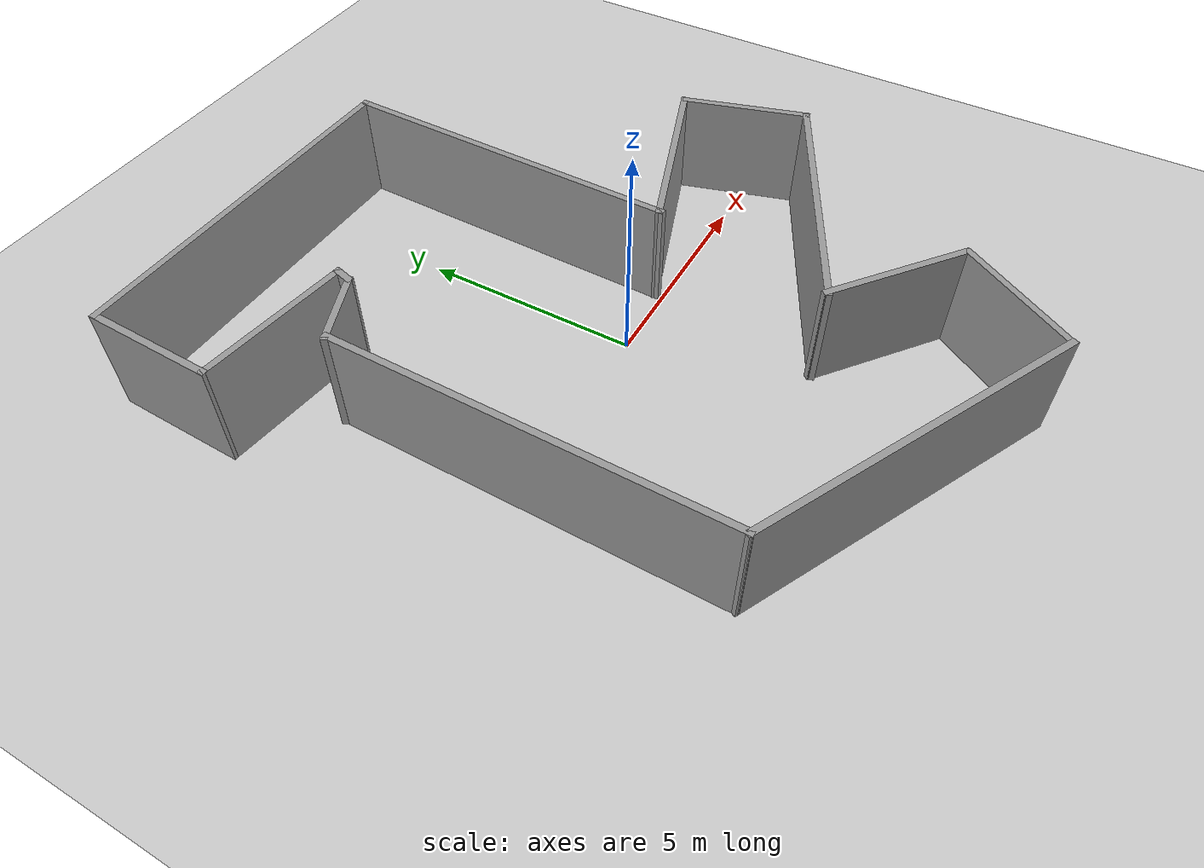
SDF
<sdf version="1.6">
 <world name="default">
  <light name="sun" type="directional">
   <pose>0 0 10 0 -0 0</pose>
   <diffuse>0.8 0.8 0.8 1</diffuse>
   <specular>0.2 0.2 0.2 1</specular>
   <attenuation>
    <range>1000</range>
    <constant>0.9</constant>
    <linear>0.01</linear>
    <quadratic>0.001</quadratic>
   </attenuation>
   <direction>-0.5 0.1 -0.9</direction>
  </light>
  <model name="ground_plane">
   <static>1</static>
   <link name="link">
    <collision name="collision">
     <geometry><plane><normal>0 0 1</normal><size>100 100</size></plane></geometry>
     <surface>
      <contact><collide_bitmask>65535</collide_bitmask></contact>
      <friction><ode><mu>100</mu><mu2>50</mu2></ode></friction>
     </surface>
    </collision>
    <visual name="visual">
     <cast_shadows>0</cast_shadows>
     <geometry><plane><normal>0 0 1</normal><size>100 100</size></plane></geometry>
     <material>
      <script><uri>file://media/materials/scripts/gazebo.material</uri><name>Gazebo/Grey</name></script>
     </material>
    </visual>
   </link>
  </model>
  <gravity>0 0 -9.8</gravity>
  <magnetic_field>6e-06 2.3e-05 -4.2e-05</magnetic_field>
  <atmosphere type="adiabatic"/>
  <physics name="default_physics" default="0" type="ode">
   <max_step_size>0.001</max_step_size>
   <real_time_factor>1</real_time_factor>
   <real_time_update_rate>1000</real_time_update_rate>
  </physics>
  <scene><ambient>0.4 0.4 0.4 1</ambient><background>0.7 0.7 0.7 1</background><shadows>1</shadows></scene>
  <audio><device>default</device></audio>
  <spherical_coordinates>
   <surface_model>EARTH_WGS84</surface_model>
   <latitude_deg>0</latitude_deg>
   <longitude_deg>0</longitude_deg>
   <elevation>0</elevation>
   <heading_deg>0</heading_deg>
  </spherical_coordinates>
  <model name="simple_env_2_1">
   <pose>0.04454 -0.052436 0 0 -0 0</pose>
   <link name="Wall_37">
    <collision name="Wall_37_Collision">
     <geometry><box><size>8.85899 0.15 2.5</size></box></geometry>
     <pose>0 0 1.25 0 -0 0</pose>
    </collision>
    <visual name="Wall_37_Visual">
     <pose>0 0 1.25 0 -0 0</pose>
     <geometry><box><size>8.85899 0.15 2.5</size></box></geometry>
     <material>
      <script><uri>file://media/materials/scripts/gazebo.material</uri><name>Gazebo/Grey</name></script>
      <ambient>1 1 1 1</ambient>
     </material>
     <meta><layer>0</layer></meta>
    </visual>
    <pose>-4.71148 -0.304432 0 0 -0 -1.57929</pose>
   </link>
   <link name="Wall_38">
    <collision name="Wall_38_Collision">
     <geometry><box><size>7.8601 0.15 2.5</size></box></geometry>
     <pose>0 0 1.25 0 -0 0</pose>
    </collision>
    <visual name="Wall_38_Visual">
     <pose>0 0 1.25 0 -0 0</pose>
     <geometry><box><size>7.8601 0.15 2.5</size></box></geometry>
     <material>
      <script><uri>file://media/materials/scripts/gazebo.material</uri><name>Gazebo/Grey</name></script>
      <ambient>1 1 1 1</ambient>
     </material>
     <meta><layer>0</layer></meta>
    </visual>
    <pose>-1.3524 -6.44538 0 0 -0 -0.481882</pose>
   </link>
   <link name="Wall_39">
    <collision name="Wall_39_Collision">
     <geometry><box><size>2.98628 0.15 2.5</size></box></geometry>
     <pose>0 0 1.25 0 -0 0</pose>
    </collision>
    <visual name="Wall_39_Visual">
     <pose>0 0 1.25 0 -0 0</pose>
     <geometry><box><size>2.98628 0.15 2.5</size></box></geometry>
     <material>
      <script><uri>file://media/materials/scripts/gazebo.material</uri><name>Gazebo/Grey</name></script>
      <ambient>1 1 1 1</ambient>
     </material>
     <meta><layer>0</layer></meta>
    </visual>
    <pose>2.83685 -7.008 0 0 -0 0.994149</pose>
   </link>
   <link name="Wall_40">
    <collision name="Wall_40_Collision">
     <geometry><box><size>3.42533 0.15 2.5</size></box></geometry>
     <pose>0 0 1.25 0 -0 0</pose>
    </collision>
    <visual name="Wall_40_Visual">
     <pose>0 0 1.25 0 -0 0</pose>
     <geometry><box><size>3.42533 0.15 2.5</size></box></geometry>
     <material>
      <script><uri>file://media/materials/scripts/gazebo.material</uri><name>Gazebo/Grey</name></script>
      <ambient>1 1 1 1</ambient>
     </material>
     <meta><layer>0</layer></meta>
    </visual>
    <pose>2.33764 -4.75302 0 0 -0 2.46062</pose>
   </link>
   <link name="Wall_41">
    <collision name="Wall_41_Collision">
     <geometry><box><size>6.12129 0.15 2.5</size></box></geometry>
     <pose>0 0 1.25 0 -0 0</pose>
    </collision>
    <visual name="Wall_41_Visual">
     <pose>0 0 1.25 0 -0 0</pose>
     <geometry><box><size>6.12129 0.15 2.5</size></box></geometry>
     <material>
      <script><uri>file://media/materials/scripts/gazebo.material</uri><name>Gazebo/Grey</name></script>
      <ambient>1 1 1 1</ambient>
     </material>
     <meta><layer>0</layer></meta>
    </visual>
    <pose>3.75243 -2.45606 0 0 -0 0.450933</pose>
   </link>
   <link name="Wall_42">
    <collision name="Wall_42_Collision">
     <geometry><box><size>3.01734 0.15 2.5</size></box></geometry>
     <pose>0 0 1.25 0 -0 0</pose>
    </collision>
    <visual name="Wall_42_Visual">
     <pose>0 0 1.25 0 -0 0</pose>
     <geometry><box><size>3.01734 0.15 2.5</size></box></geometry>
     <material>
      <script><uri>file://media/materials/scripts/gazebo.material</uri><name>Gazebo/Grey</name></script>
      <ambient>1 1 1 1</ambient>
     </material>
     <meta><layer>0</layer></meta>
    </visual>
    <pose>6.07357 0.219864 0 0 -0 1.85846</pose>
   </link>
   <link name="Wall_43">
    <collision name="Wall_43_Collision">
     <geometry><box><size>4.38092 0.15 2.5</size></box></geometry>
     <pose>0 0 1.25 0 -0 0</pose>
    </collision>
    <visual name="Wall_43_Visual">
     <pose>0 0 1.25 0 -0 0</pose>
     <geometry><box><size>4.38092 0.15 2.5</size></box></geometry>
     <material>
      <script><uri>file://media/materials/scripts/gazebo.material</uri><name>Gazebo/Grey</name></script>
      <ambient>1 1 1 1</ambient>
     </material>
     <meta><layer>0</layer></meta>
    </visual>
    <pose>3.66583 0.948881 0 0 -0 -2.81113</pose>
   </link>
   <link name="Wall_44">
    <collision name="Wall_44_Collision">
     <geometry><box><size>8.06703 0.15 2.5</size></box></geometry>
     <pose>0 0 1.25 0 -0 0</pose>
    </collision>
    <visual name="Wall_44_Visual">
     <pose>0 0 1.25 0 -0 0</pose>
     <geometry><box><size>8.06703 0.15 2.5</size></box></geometry>
     <material>
      <script><uri>file://media/materials/scripts/gazebo.material</uri><name>Gazebo/Grey</name></script>
      <ambient>1 1 1 1</ambient>
     </material>
     <meta><layer>0</layer></meta>
    </visual>
    <pose>1.73826 4.1796 0 0 -0 1.55225</pose>
   </link>
   <link name="Wall_45">
    <collision name="Wall_45_Collision">
     <geometry><box><size>8.38024 0.15 2.5</size></box></geometry>
     <pose>0 0 1.25 0 -0 0</pose>
    </collision>
    <visual name="Wall_45_Visual">
     <pose>0 0 1.25 0 -0 0</pose>
     <geometry><box><size>8.38024 0.15 2.5</size></box></geometry>
     <material>
      <script><uri>file://media/materials/scripts/gazebo.material</uri><name>Gazebo/Grey</name></script>
      <ambient>1 1 1 1</ambient>
     </material>
     <meta><layer>0</layer></meta>
    </visual>
    <pose>-2.30321 8.21452 0 0 -0 3.13141</pose>
   </link>
   <link name="Wall_46">
    <collision name="Wall_46_Collision">
     <geometry><box><size>2.98225 0.15 2.5</size></box></geometry>
     <pose>0 0 1.25 0 -0 0</pose>
    </collision>
    <visual name="Wall_46_Visual">
     <pose>0 0 1.25 0 -0 0</pose>
     <geometry><box><size>2.98225 0.15 2.5</size></box></geometry>
     <material>
      <script><uri>file://media/materials/scripts/gazebo.material</uri><name>Gazebo/Grey</name></script>
      <ambient>1 1 1 1</ambient>
     </material>
     <meta><layer>0</layer></meta>
    </visual>
    <pose>-6.46248 6.84071 0 0 -0 -1.59498</pose>
   </link>
   <link name="Wall_47">
    <collision name="Wall_47_Collision">
     <geometry><box><size>3.51546 0.15 2.5</size></box></geometry>
     <pose>0 0 1.25 0 -0 0</pose>
    </collision>
    <visual name="Wall_47_Visual">
     <pose>0 0 1.25 0 -0 0</pose>
     <geometry><box><size>3.51546 0.15 2.5</size></box></geometry>
     <material>
      <script><uri>file://media/materials/scripts/gazebo.material</uri><name>Gazebo/Grey</name></script>
      <ambient>1 1 1 1</ambient>
     </material>
     <meta><layer>0</layer></meta>
    </visual>
    <pose>-4.81763 5.21034 0 0 -0 -0.127915</pose>
   </link>
   <link name="Wall_48">
    <collision name="Wall_48_Collision">
     <geometry><box><size>0.5 0.15 2.5</size></box></geometry>
     <pose>0 0 1.25 0 -0 0</pose>
    </collision>
    <visual name="Wall_48_Visual">
     <pose>0 0 1.25 0 -0 0</pose>
     <geometry><box><size>0.5 0.15 2.5</size></box></geometry>
     <material>
      <script><uri>file://media/materials/scripts/gazebo.material</uri><name>Gazebo/Grey</name></script>
      <ambient>1 1 1 1</ambient>
     </material>
     <meta><layer>0</layer></meta>
    </visual>
    <pose>-3.19394 4.82665 0 0 -0 -1.8326</pose>
   </link>
   <link name="Wall_49">
    <collision name="Wall_49_Collision">
     <geometry><box><size>1.74107 0.15 2.5</size></box></geometry>
     <pose>0 0 1.25 0 -0 0</pose>
    </collision>
    <visual name="Wall_49_Visual">
     <pose>0 0 1.25 0 -0 0</pose>
     <geometry><box><size>1.74107 0.15 2.5</size></box></geometry>
     <material>
      <script><uri>file://media/materials/scripts/gazebo.material</uri><name>Gazebo/Grey</name></script>
      <ambient>1 1 1 1</ambient>
     </material>
     <meta><layer>0</layer></meta>
    </visual>
    <pose>-3.97446 4.35376 0 0 -0 -2.74969</pose>
   </link>
   <static>1</static>
  </model>
 </world>
</sdf>
